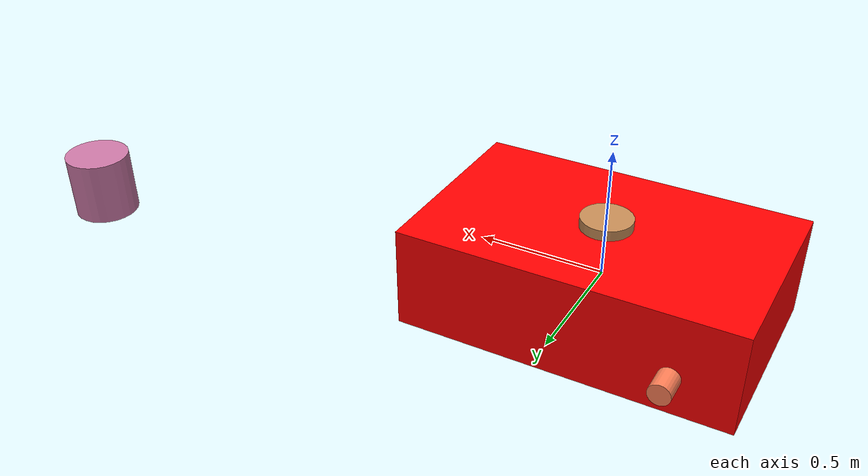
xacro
<?xml version="1.1"?>
<robot xmlns:xacro="http://ros.org/wiki/xacro" name="four_wheels_robot">

    <xacro:property name="wheel_radius" value="0.0425"/>
    <xacro:property name="wheel_length" value="0.1"/>

    <!-- Include control definitions -->
    <xacro:include filename="$(find four_wheels_robot)/urdf/ros2_wheel_controllers.xacro"/>

    <xacro:macro name="wheel" params="prefix">
        <link name="${prefix}_wheel">
            <inertial>

                <mass value="0.2"/>
                <inertia ixx="0.004087" ixy="0.0" ixz="0.0" iyy="0.004087" iyz="0.0" izz="0.007840"/>
            </inertial>
            <visual>
                <origin xyz="0.0 0.0 0.0" rpy="1.57 0.0 0.0"/>
                <geometry>
                    <cylinder radius="${wheel_radius}" length="${wheel_length}"/>
                </geometry>
                <material name="">
                    <color rgba="1.0 0.5 0.34 1.0"/>
                </material>
            </visual>
            <collision>
             <origin xyz="0.0 0.0 0.0" rpy="1.57 0.0 0.0"/>
                <geometry>
                    <cylinder radius="${wheel_radius}" length="${wheel_length}"/>
                </geometry>
            </collision>
        </link>
    </xacro:macro>

    <xacro:wheel prefix="back_left"/>
    <xacro:wheel prefix="back_right" />

    <!-- Chassis -->
    <link name="base_link">
        <inertial>
            <origin xyz="0.0 0.0 0.0" rpy="0.0 0.0 0.0"/>
            <mass value="10.0"/>
            <inertia ixx="1.0" ixy="0.0" ixz="0.0" iyy="1.0" iyz="0.0" izz="1.0"/>
        </inertial>
        <visual>
            <origin xyz="0.0 0.0 0.0" rpy="0.0 0.0 0.0"/>
            <geometry>
                <box size="1.3 0.8 0.4"/>
            </geometry>
            <material name="">
                <color rgba="1.0 0.0 0.0 1.0"/>
            </material>
        </visual>
        <collision>
            <origin xyz="0.0 0.0 0.0" rpy="0.0 0.0 0.0"/>
            <geometry>
                <box size="1.3 0.8 0.4"/>
            </geometry>
        </collision>
    </link>
    <link name="base_footprint"></link>

    <joint name="base_joint" type="fixed">
        <origin xyz="0.0 0.0 0.0" rpy="0.0 0.0 0.0"/>
        <parent link="base_footprint"/>
        <child link="base_link"/>
        <axis xyz="0.0 0.0 0.02"/>
    </joint>

    <xacro:macro name="wheel_joint" params="prefix x y r">
        <joint name="${prefix}_wheel_joint" type="continuous">
            <origin xyz="${x} ${y} -${wheel_radius}" rpy="${r} 0 0"/>
            <parent link="base_link"/>
            <child link="${prefix}_wheel"/>
            <axis xyz="0 1 0"/>
            <dynamics damping="0.1" friction="0.0"/>
        </joint>
    </xacro:macro>

    <xacro:wheel_joint prefix="back_left"   x="-0.41" y="0.46" r="0"/>
    <xacro:wheel_joint prefix="back_right"  x="-0.41" y="-0.46" r="0"/>

    <!--Adding a lidar-->
    <link name="laser">
        <visual>
            <geometry>
                <cylinder radius="0.1" length="0.08"/>
            </geometry>
                <material name="">
                    <color rgba="0.78 0.55 0.34 1.0"/>
                </material>
        </visual>
    </link>

    <joint name="liadar_joint" type="fixed">
        <origin xyz="0.0 0.0 0.2" rpy="0.0 0.0 0.0"/>
        <parent link="base_link"/>
        <child link="laser"/>
        <axis xyz="0.0 0.0 0.0"/>
    </joint>

    <!-- Adding IMU SENSOR-->
<link name="imu_link">
  <visual>
    <geometry>
      <box size="0.1 0.1 0.1"/>
    </geometry>
  </visual>
  <collision>
    <geometry>
      <box size="0.1 0.1 0.1"/>
    </geometry>
  </collision>
  <inertial>
    <origin xyz="0.0 0.0 0.0" rpy="0.0 0.0 0.0"/>
    <mass value="0.1"/>
    <inertia ixx="0.002" ixy="0.0" ixz="0.002" iyy="0.002" iyz="0.0" izz="0.002"/>
  </inertial>

</link>

<joint name="imu_joint" type="fixed">
  <parent link="base_link"/>
  <child link="imu_link"/>
  <origin xyz="0.0 0.0 0.005" rpy="0.0 0.0 0.0"/>
</joint>

<link name="offload_motor">
    <visual>
        <geometry>
            <cylinder radius="0.1" length="0.2"/>
        </geometry>
    </visual>
    <collision>
        <geometry>
            <cylinder radius="0.1" length= "0.2"/>
        </geometry>
    </collision>
</link>

<joint name="offload_motor_joint" type ="continuous">
    <parent link="base_link"/>
    <child link="offload_motor"/>
    <origin xyz="1.4 1 0.5" rpy ="0.0 0.0 0.0"/>
</joint>

</robot>
